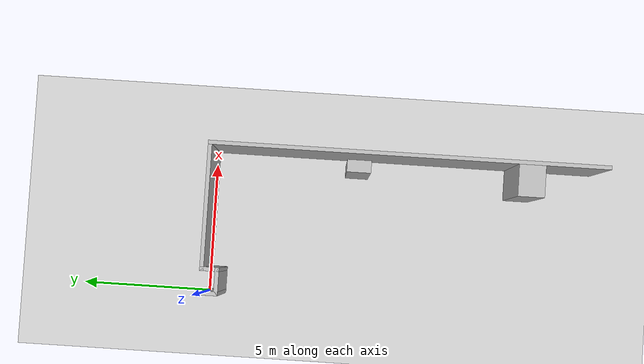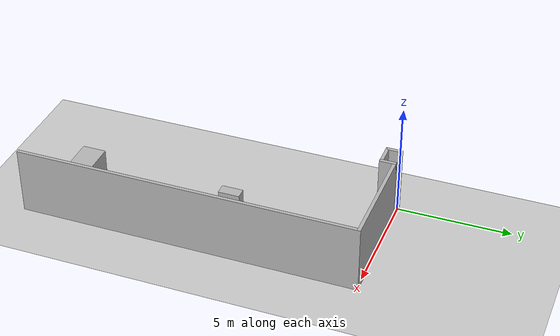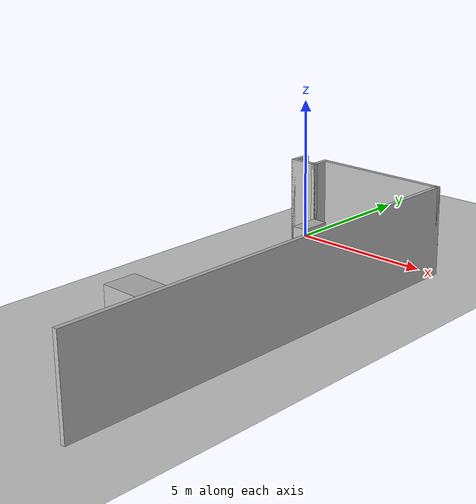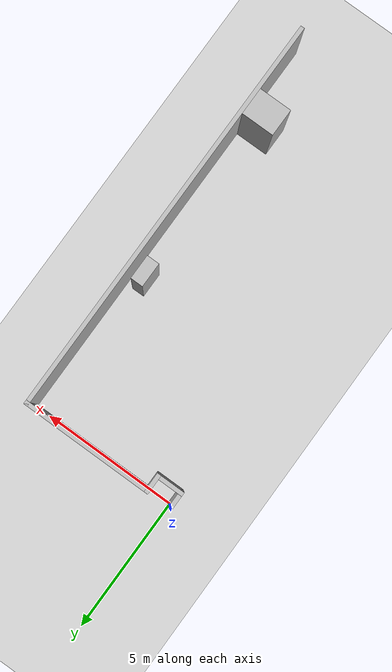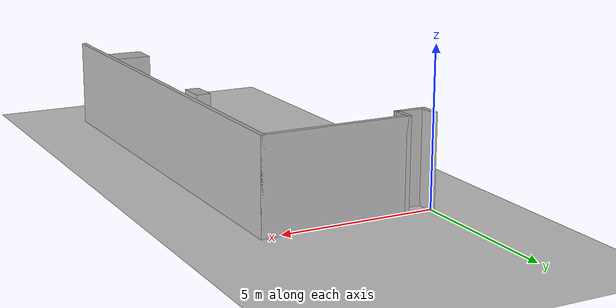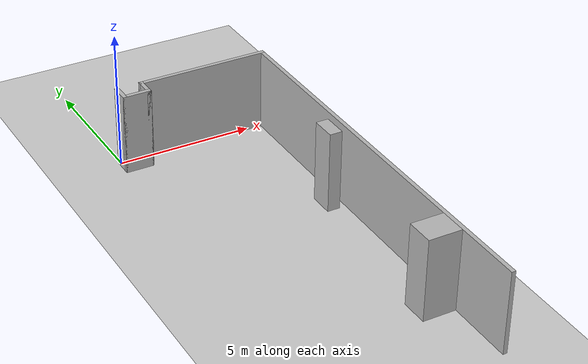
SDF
<?xml version="1.0" ?>
<sdf version="1.6">
  <world name="pillar_corner_removed">

    <include>
      <uri>model://ground_plane</uri>
    </include>
    <include>
      <uri>model://sun</uri>
    </include>

    <gui>
      <camera name="user_camera">
        <pose>2.8 -7.4 28 0 1.5708 0</pose>
        <projection_type>orthographic</projection_type>
      </camera>
    </gui>

    <model name="pillar_corner_removed_walls">
      <static>true</static>
      <pose>0 0 0 0 0 0</pose>
      <link name="link">

        <!-- S2: west side of notch 1 -->
        <visual name="v_s2"><pose>0 -0.2875 1.5 0 0 0</pose>
          <geometry><box><size>0.15 0.725 3.0</size></box></geometry>
        </visual>
        <collision name="c_s2"><pose>0 -0.2875 1.5 0 0 0</pose>
          <geometry><box><size>0.15 0.725 3.0</size></box></geometry>
        </collision>

        <!-- S3: floor of notch 1 -->
        <visual name="v_s3"><pose>0.45 -0.575 1.5 0 0 0</pose>
          <geometry><box><size>1.05 0.15 3.0</size></box></geometry>
        </visual>
        <collision name="c_s3"><pose>0.45 -0.575 1.5 0 0 0</pose>
          <geometry><box><size>1.05 0.15 3.0</size></box></geometry>
        </collision>

        <!-- S4: east side of notch 1 -->
        <visual name="v_s4"><pose>0.9 -0.2875 1.5 0 0 0</pose>
          <geometry><box><size>0.15 0.725 3.0</size></box></geometry>
        </visual>
        <collision name="c_s4"><pose>0.9 -0.2875 1.5 0 0 0</pose>
          <geometry><box><size>0.15 0.725 3.0</size></box></geometry>
        </collision>

        <!-- S5: top wall, 4.0 m run after notch 1 -->
        <visual name="v_s5"><pose>3.25 0 1.5 0 0 0</pose>
          <geometry><box><size>4.85 0.15 3.0</size></box></geometry>
        </visual>
        <collision name="c_s5"><pose>3.25 0 1.5 0 0 0</pose>
          <geometry><box><size>4.85 0.15 3.0</size></box></geometry>
        </collision>

        <!-- S8: long wall, 15 m (y = +0.075 down to -14.925) -->
        <visual name="v_s8"><pose>5.6 -7.425 1.5 0 0 0</pose>
          <geometry><box><size>0.15 15.0 3.0</size></box></geometry>
        </visual>
        <collision name="c_s8"><pose>5.6 -7.425 1.5 0 0 0</pose>
          <geometry><box><size>0.15 15.0 3.0</size></box></geometry>
        </collision>

        <!-- Block: 1.2 m deep x 1.0 m wide bump-out flush against the long wall inner face (x=5.525) -->
        <visual name="v_block"><pose>4.925 -12.0 1.5 0 0 0</pose>
          <geometry><box><size>1.2 1.0 3.0</size></box></geometry>
        </visual>
        <collision name="c_block"><pose>4.925 -12.0 1.5 0 0 0</pose>
          <geometry><box><size>1.2 1.0 3.0</size></box></geometry>
        </collision>

        <!-- Pillar: free-standing bump-out near the long wall -->
        <visual name="v_pillar"><pose>5.055 -5.575 1.5 0 0 0</pose>
          <geometry><box><size>0.46 0.9 3.0</size></box></geometry>
        </visual>
        <collision name="c_pillar"><pose>5.055 -5.575 1.5 0 0 0</pose>
          <geometry><box><size>0.46 0.9 3.0</size></box></geometry>
        </collision>

      </link>
    </model>

  </world>
</sdf>
